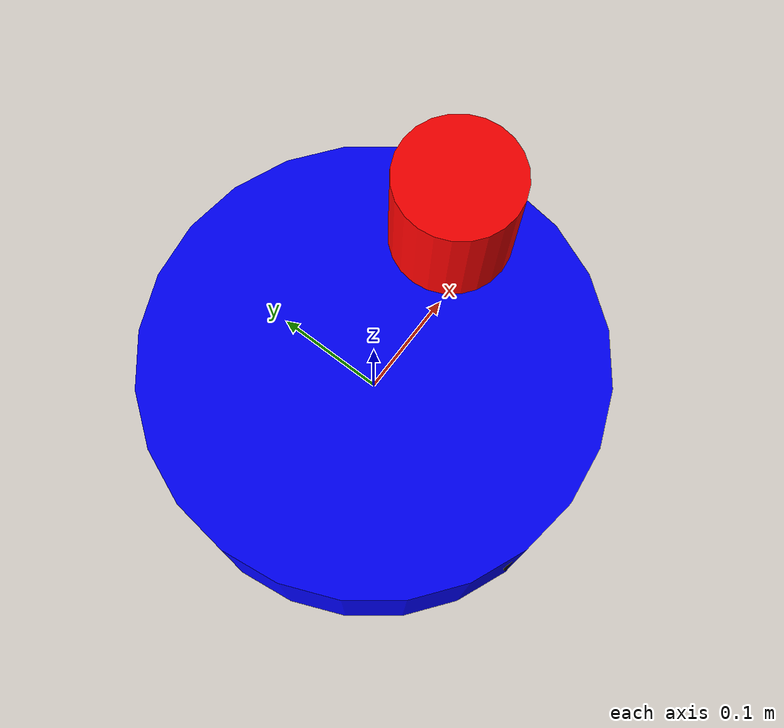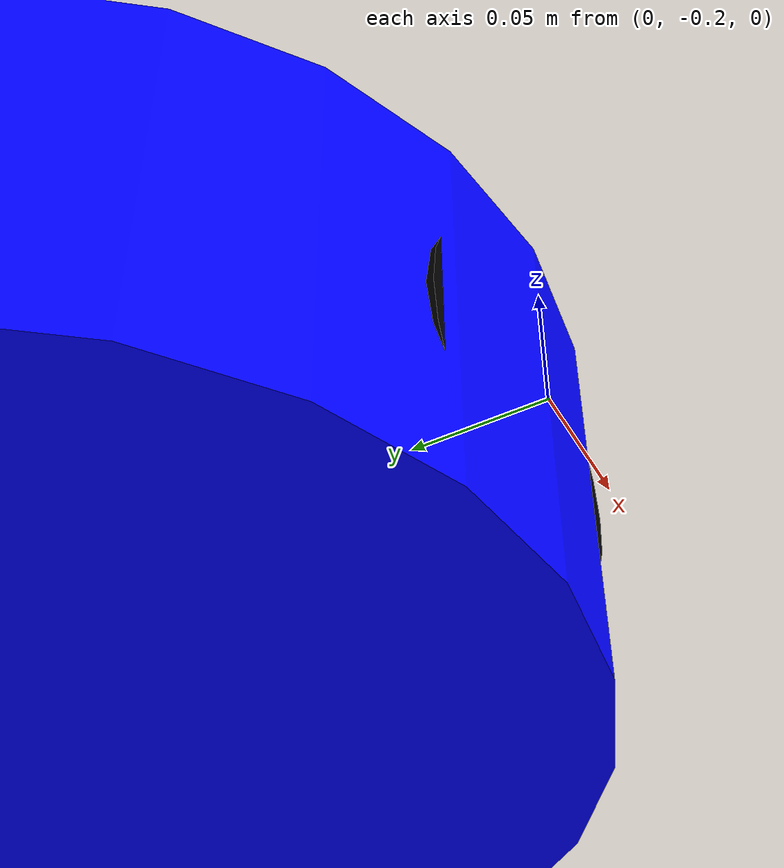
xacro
<?xml version="1.0"?>
<robot name="dashgo_d1" xmlns:xacro="http://www.ros.org/wiki/xacro">

  <!-- =========================================================
       机器人参数定义
    ========================================================== -->
  <xacro:property name="wheel_radius" value="0.0632"/>  <!-- 轮子半径 (m) -->
  <xacro:property name="wheel_length" value="0.04"/>     <!-- 轮子宽度 (m) -->
  <xacro:property name="wheel_base" value="0.3420"/>     <!-- 轮距 (m) -->

  <xacro:property name="base_radius" value="0.20"/>       <!-- 底盘半径 (m) -->
  <xacro:property name="base_height" value="0.15"/>       <!-- 底盘高度 (m) -->
  <xacro:property name="base_mass" value="5.0"/>          <!-- 底盘质量 (kg) -->

  <xacro:property name="laser_radius" value="0.05"/>      <!-- 雷达半径 (m) -->
  <xacro:property name="laser_height" value="0.10"/>      <!-- 雷达高度 (m) -->
  <xacro:property name="laser_mass" value="0.2"/>         <!-- 雷达质量 (kg) -->

  <!-- 雷达安装位置 -->
  <xacro:property name="laser_x" value="0.10"/>           <!-- 前方距离 (m) -->
  <xacro:property name="laser_y" value="0.0"/>            <!-- 左右偏移 (m) -->
  <xacro:property name="laser_z" value="0.20"/>           <!-- 高度 (m) -->

  <!-- 材料属性 -->
  <xacro:property name="wheel_mass" value="0.2"/>         <!-- 单个轮子质量 (kg) -->

  <!-- =========================================================
       基础链接（base_link）
    ========================================================== -->
  <link name="base_link">
    <visual>
      <geometry>
        <cylinder radius="${base_radius}" length="${base_height}"/>
      </geometry>
      <origin rpy="0 0 0" xyz="0 0 0"/>
      <material name="blue">
        <color rgba="0.0 0.0 1.0 1.0"/>
      </material>
    </visual>

    <collision>
      <origin xyz="0 0 0.05" rpy="0 0 0"/>
      <geometry>
        <cylinder length="0.10" radius="0.10"/>  <!-- 抬高5cm避免拖底，厚度减半，半径保持0.10避免水平碰撞 -->
      </geometry>
    </collision>

    <inertial>
      <mass value="${base_mass}"/>
      <inertia ixx="0.05" ixy="0" ixz="0" iyy="0.05" iyz="0" izz="0.08"/>
    </inertial>
  </link>

  <!-- =========================================================
       轮子定义
    ========================================================== -->
  <xacro:macro name="wheel" params="prefix x_reflect y_reflect">
    <link name="${prefix}_wheel_link">
      <visual>
        <geometry>
          <cylinder radius="${wheel_radius}" length="${wheel_length}"/>
        </geometry>
        <origin rpy="${pi/2} 0 0" xyz="0 0 0"/>
        <material name="black">
          <color rgba="0.0 0.0 0.0 1.0"/>
        </material>
      </visual>

      <collision>
        <geometry>
          <cylinder radius="${wheel_radius}" length="${wheel_length}"/>
        </geometry>
        <origin rpy="${pi/2} 0 0" xyz="0 0 0"/>
      </collision>

      <inertial>
        <mass value="${wheel_mass}"/>
        <inertia ixx="0.0001" ixy="0" ixz="0" iyy="0.0001" iyz="0" izz="0.0001"/>
      </inertial>
    </link>

    <!-- 轮子关节 -->
    <joint name="${prefix}_wheel_joint" type="continuous">
      <parent link="base_link"/>
      <child link="${prefix}_wheel_link"/>
      <origin xyz="0 ${y_reflect * wheel_base/2} 0" rpy="0 0 0"/>
      <axis xyz="0 1 0"/>
    </joint>
  </xacro:macro>

  <!-- 左右轮子 -->
  <xacro:wheel prefix="left" x_reflect="1" y_reflect="1"/>
  <xacro:wheel prefix="right" x_reflect="1" y_reflect="-1"/>

  <!-- =========================================================
       雷达链接
    ========================================================== -->
  <link name="laser_link">
    <visual>
      <geometry>
        <cylinder radius="${laser_radius}" length="${laser_height}"/>
      </geometry>
      <origin rpy="0 0 0" xyz="0 0 0"/>
      <material name="red">
        <color rgba="1.0 0.0 0.0 1.0"/>
      </material>
    </visual>

    <collision>
      <geometry>
        <cylinder radius="${laser_radius}" length="${laser_height}"/>
      </geometry>
      <origin rpy="0 0 0" xyz="0 0 0"/>
    </collision>

    <inertial>
      <mass value="${laser_mass}"/>
      <inertia ixx="0.00001" ixy="0" ixz="0" iyy="0.00001" iyz="0" izz="0.00001"/>
    </inertial>
  </link>

  <!-- 雷达关节 -->
  <joint name="laser_joint" type="fixed">
    <parent link="base_link"/>
    <child link="laser_link"/>
    <origin xyz="${laser_x} ${laser_y} ${laser_z}" rpy="0 0 0"/>
  </joint>

  <!-- =========================================================
       Gazebo仿真插件（修复TF和控制）
    ========================================================== -->

  <!-- 差速驱动控制器（关键！修复odom→base_link TF） -->
  <gazebo>
    <plugin name="differential_drive_controller" filename="libgazebo_ros_diff_drive.so">
      <updateRate>50</updateRate>
      <leftJoint>left_wheel_joint</leftJoint>
      <rightJoint>right_wheel_joint</rightJoint>
      <wheelSeparation>${wheel_base}</wheelSeparation>
      <wheelDiameter>${2 * wheel_radius}</wheelDiameter>
      <wheelAcceleration>1.0</wheelAcceleration>
      <wheelTorque>20</wheelTorque>
      <commandTopic>cmd_vel</commandTopic>
      <odometryTopic>odom</odometryTopic>
      <odometryFrame>odom</odometryFrame>
      <robotBaseFrame>base_link</robotBaseFrame>
      <odometrySource>world</odometrySource>
      <publishWheelTF>true</publishWheelTF>
      <publishOdomTF>true</publishOdomTF>
      <publishWheelJointState>true</publishWheelJointState>
      <covariance_x>0.0001</covariance_x>
      <covariance_y>0.0001</covariance_y>
      <covariance_yaw>0.01</covariance_yaw>
    </plugin>
  </gazebo>

  <!-- 雷达传感器插件（发布/scan数据） -->
  <gazebo reference="laser_link">
    <sensor type="ray" name="laser_sensor">
      <pose>0 0 0 0 0 0</pose>
      <visualize>true</visualize>
      <update_rate>10</update_rate>
      <ray>
        <scan>
          <horizontal>
            <samples>360</samples>
            <resolution>1</resolution>
            <min_angle>-3.14159</min_angle>
            <max_angle>3.14159</max_angle>
          </horizontal>
        </scan>
        <range>
          <min>0.10</min>
          <max>12.0</max>
          <resolution>0.01</resolution>
        </range>
        <noise>
          <type>gaussian</type>
          <mean>0.0</mean>
          <stddev>0.01</stddev>
        </noise>
      </ray>
      <plugin name="laser_controller" filename="libgazebo_ros_laser.so">
        <topicName>/scan</topicName>
        <frameName>laser_link</frameName>
      </plugin>
    </sensor>
  </gazebo>

  <!-- 轮子摩擦力属性（防止打滑和穿模） -->
  <gazebo reference="left_wheel_link">
    <mu1>1.0</mu1>
    <mu2>1.0</mu2>
    <kp>1000000.0</kp>
    <kd>100.0</kd>
    <minDepth>0.001</minDepth>
    <material>Gazebo/Black</material>
  </gazebo>

  <gazebo reference="right_wheel_link">
    <mu1>1.0</mu1>
    <mu2>1.0</mu2>
    <kp>1000000.0</kp>
    <kd>100.0</kd>
    <minDepth>0.001</minDepth>
    <material>Gazebo/Black</material>
  </gazebo>

</robot>
